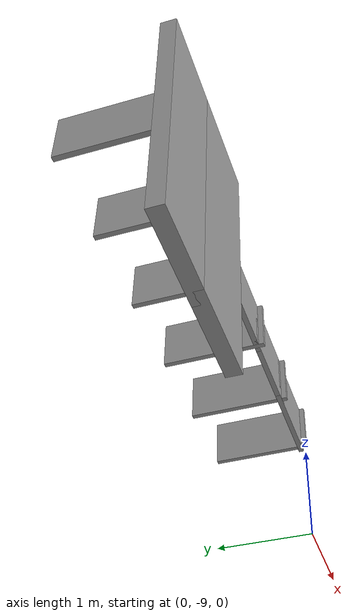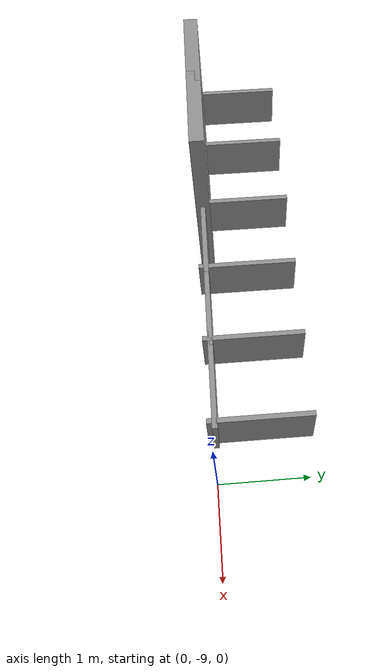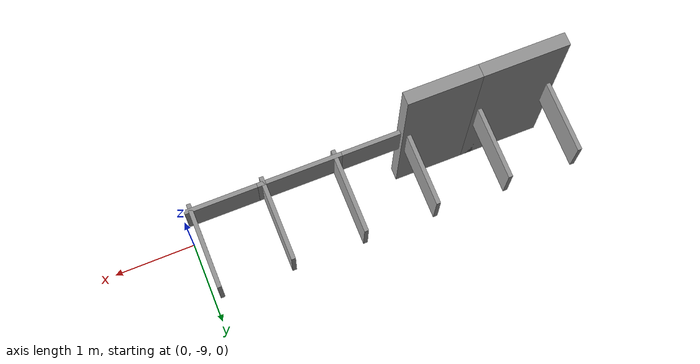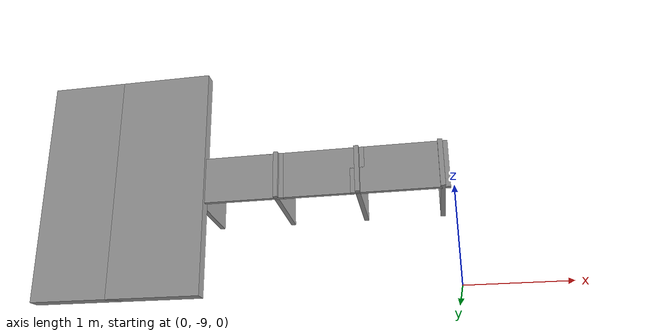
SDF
<?xml version='1.0'?>
<sdf version='1.6'>
  <model name='parking'>
    <pose frame=''>-2.23324 -8.52956 0 0 -0 0</pose>
    <link name='Wall_31'>
      <collision name='Wall_31_Collision'>
        <geometry>
          <box>
            <size>1 0.05 0.5</size>
          </box>
        </geometry>
        <pose frame=''>0 0 1.25 0 -0 0</pose>
      </collision>
      <visual name='Wall_31_Visual'>
        <pose frame=''>0 0 1.25 0 -0 0</pose>
        <geometry>
          <box>
            <size>1 0.05 0.5</size>
          </box>
        </geometry>
        <material>
          <script>
            <uri>file://media/materials/scripts/gazebo.material</uri>
            <name>Gazebo/Grey</name>
          </script>
          <ambient>1 1 1 1</ambient>
        </material>
        <meta>
          <layer>0</layer>
        </meta>
      </visual>
      <pose frame=''>-2.12495 -0.004397 0 0 -0 -1.5708</pose>
    </link>
    <link name='Wall_32'>
      <collision name='Wall_32_Collision'>
        <geometry>
          <box>
            <size>0.991389 0.15 2.5</size>
          </box>
        </geometry>
        <pose frame=''>0 0 1.25 0 -0 0</pose>
      </collision>
      <visual name='Wall_32_Visual'>
        <pose frame=''>0 0 1.25 0 -0 0</pose>
        <geometry>
          <box>
            <size>0.991389 0.15 2.5</size>
          </box>
        </geometry>
        <material>
          <script>
            <uri>file://media/materials/scripts/gazebo.material</uri>
            <name>Gazebo/Grey</name>
          </script>
          <ambient>1 1 1 1</ambient>
        </material>
        <meta>
          <layer>0</layer>
        </meta>
      </visual>
      <pose frame=''>-1.70435 -0.429398 0 0 -0 0</pose>
    </link>
    <link name='Wall_33'>
      <collision name='Wall_33_Collision'>
        <geometry>
          <box>
            <size>1 0.05 0.5</size>
          </box>
        </geometry>
        <pose frame=''>0 0 1.25 0 -0 0</pose>
      </collision>
      <visual name='Wall_33_Visual'>
        <pose frame=''>0 0 1.25 0 -0 0</pose>
        <geometry>
          <box>
            <size>1 0.05 0.5</size>
          </box>
        </geometry>
        <material>
          <script>
            <uri>file://media/materials/scripts/gazebo.material</uri>
            <name>Gazebo/Grey</name>
          </script>
          <ambient>1 1 1 1</ambient>
        </material>
        <meta>
          <layer>0</layer>
        </meta>
      </visual>
      <pose frame=''>-1.28375 0.004397 0 0 -0 1.5708</pose>
    </link>
    <link name='Wall_35'>
      <collision name='Wall_35_Collision'>
        <geometry>
          <box>
            <size>1.00897 0.15 2.5</size>
          </box>
        </geometry>
        <pose frame=''>0 0 1.25 0 -0 0</pose>
      </collision>
      <visual name='Wall_35_Visual'>
        <pose frame=''>0 0 1.25 0 -0 0</pose>
        <geometry>
          <box>
            <size>1.00897 0.15 2.5</size>
          </box>
        </geometry>
        <material>
          <script>
            <uri>file://media/materials/scripts/gazebo.material</uri>
            <name>Gazebo/Grey</name>
          </script>
          <ambient>1 1 1 1</ambient>
        </material>
        <meta>
          <layer>0</layer>
        </meta>
      </visual>
      <pose frame=''>-0.854351 -0.429398 0 0 -0 0</pose>
    </link>
    <link name='Wall_36'>
      <collision name='Wall_36_Collision'>
        <geometry>
          <box>
            <size>1 0.05 0.5</size>
          </box>
        </geometry>
        <pose frame=''>0 0 1.25 0 -0 0</pose>
      </collision>
      <visual name='Wall_36_Visual'>
        <pose frame=''>0 0 1.25 0 -0 0</pose>
        <geometry>
          <box>
            <size>1 0.05 0.5</size>
          </box>
        </geometry>
        <material>
          <script>
            <uri>file://media/materials/scripts/gazebo.material</uri>
            <name>Gazebo/Grey</name>
          </script>
          <ambient>1 1 1 1</ambient>
        </material>
        <meta>
          <layer>0</layer>
        </meta>
      </visual>
      <pose frame=''>-0.424954 -0.004397 0 0 -0 1.5708</pose>
    </link>
    <link name='Wall_38'>
      <collision name='Wall_38_Collision'>
        <geometry>
          <box>
            <size>1 0.05 0.5</size>
          </box>
        </geometry>
        <pose frame=''>0 0 1.25 0 -0 0</pose>
      </collision>
      <visual name='Wall_38_Visual'>
        <pose frame=''>0 0 1.25 0 -0 0</pose>
        <geometry>
          <box>
            <size>1 0.05 0.5</size>
          </box>
        </geometry>
        <material>
          <script>
            <uri>file://media/materials/scripts/gazebo.material</uri>
            <name>Gazebo/Grey</name>
          </script>
          <ambient>1 1 1 1</ambient>
        </material>
        <meta>
          <layer>0</layer>
        </meta>
      </visual>
      <pose frame=''>4.6e-05 -0.429398 0 0 -0 0</pose>
    </link>
    <link name='Wall_39'>
      <collision name='Wall_39_Collision'>
        <geometry>
          <box>
            <size>1 0.05 0.5</size>
          </box>
        </geometry>
        <pose frame=''>0 0 1.25 0 -0 0</pose>
      </collision>
      <visual name='Wall_39_Visual'>
        <pose frame=''>0 0 1.25 0 -0 0</pose>
        <geometry>
          <box>
            <size>1 0.05 0.5</size>
          </box>
        </geometry>
        <material>
          <script>
            <uri>file://media/materials/scripts/gazebo.material</uri>
            <name>Gazebo/Grey</name>
          </script>
          <ambient>1 1 1 1</ambient>
        </material>
        <meta>
          <layer>0</layer>
        </meta>
      </visual>
      <pose frame=''>0.425046 -0.004397 0 0 -0 1.5708</pose>
    </link>
    <link name='Wall_41'>
      <collision name='Wall_41_Collision'>
        <geometry>
          <box>
            <size>1 0.05 0.5</size>
          </box>
        </geometry>
        <pose frame=''>0 0 1.25 0 -0 0</pose>
      </collision>
      <visual name='Wall_41_Visual'>
        <pose frame=''>0 0 1.25 0 -0 0</pose>
        <geometry>
          <box>
            <size>1 0.05 0.5</size>
          </box>
        </geometry>
        <material>
          <script>
            <uri>file://media/materials/scripts/gazebo.material</uri>
            <name>Gazebo/Grey</name>
          </script>
          <ambient>1 1 1 1</ambient>
        </material>
        <meta>
          <layer>0</layer>
        </meta>
      </visual>
      <pose frame=''>0.850046 -0.429398 0 0 -0 0</pose>
    </link>
    <link name='Wall_42'>
      <collision name='Wall_42_Collision'>
        <geometry>
          <box>
            <size>1 0.05 0.5</size>
          </box>
        </geometry>
        <pose frame=''>0 0 1.25 0 -0 0</pose>
      </collision>
      <visual name='Wall_42_Visual'>
        <pose frame=''>0 0 1.25 0 -0 0</pose>
        <geometry>
          <box>
            <size>1 0.05 0.5</size>
          </box>
        </geometry>
        <material>
          <script>
            <uri>file://media/materials/scripts/gazebo.material</uri>
            <name>Gazebo/Grey</name>
          </script>
          <ambient>1 1 1 1</ambient>
        </material>
        <meta>
          <layer>0</layer>
        </meta>
      </visual>
      <pose frame=''>1.27505 -0.004397 0 0 -0 1.5708</pose>
    </link>
    <link name='Wall_44'>
      <collision name='Wall_44_Collision'>
        <geometry>
          <box>
            <size>1 0.05 0.5</size>
          </box>
        </geometry>
        <pose frame=''>0 0 1.25 0 -0 0</pose>
      </collision>
      <visual name='Wall_44_Visual'>
        <pose frame=''>0 0 1.25 0 -0 0</pose>
        <geometry>
          <box>
            <size>1 0.05 0.5</size>
          </box>
        </geometry>
        <material>
          <script>
            <uri>file://media/materials/scripts/gazebo.material</uri>
            <name>Gazebo/Grey</name>
          </script>
          <ambient>1 1 1 1</ambient>
        </material>
        <meta>
          <layer>0</layer>
        </meta>
      </visual>
      <pose frame=''>1.70005 -0.429398 0 0 -0 0</pose>
    </link>
    <link name='Wall_45'>
      <collision name='Wall_45_Collision'>
        <geometry>
          <box>
            <size>1 0.05 0.5</size>
          </box>
        </geometry>
        <pose frame=''>0 0 1.25 0 -0 0</pose>
      </collision>
      <visual name='Wall_45_Visual'>
        <pose frame=''>0 0 1.25 0 -0 0</pose>
        <geometry>
          <box>
            <size>1 0.05 0.5</size>
          </box>
        </geometry>
        <material>
          <script>
            <uri>file://media/materials/scripts/gazebo.material</uri>
            <name>Gazebo/Grey</name>
          </script>
          <ambient>1 1 1 1</ambient>
        </material>
        <meta>
          <layer>0</layer>
        </meta>
      </visual>
      <pose frame=''>2.12505 -0.004397 0 0 -0 1.5708</pose>
    </link>
    <static>1</static>
  </model>
</sdf>
